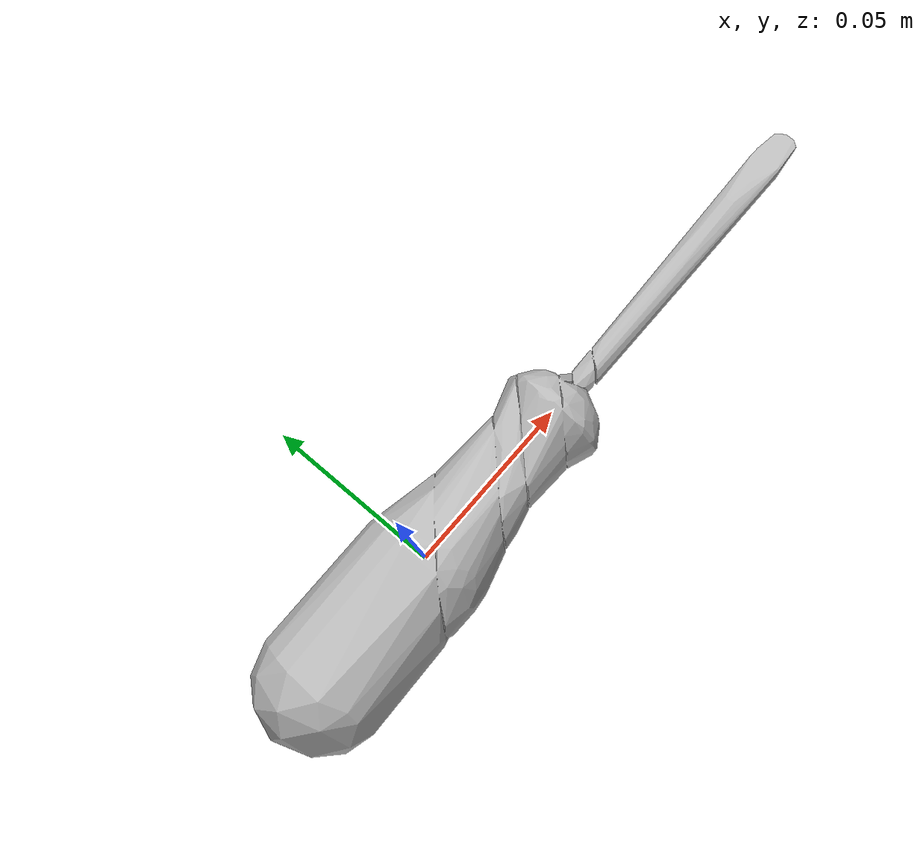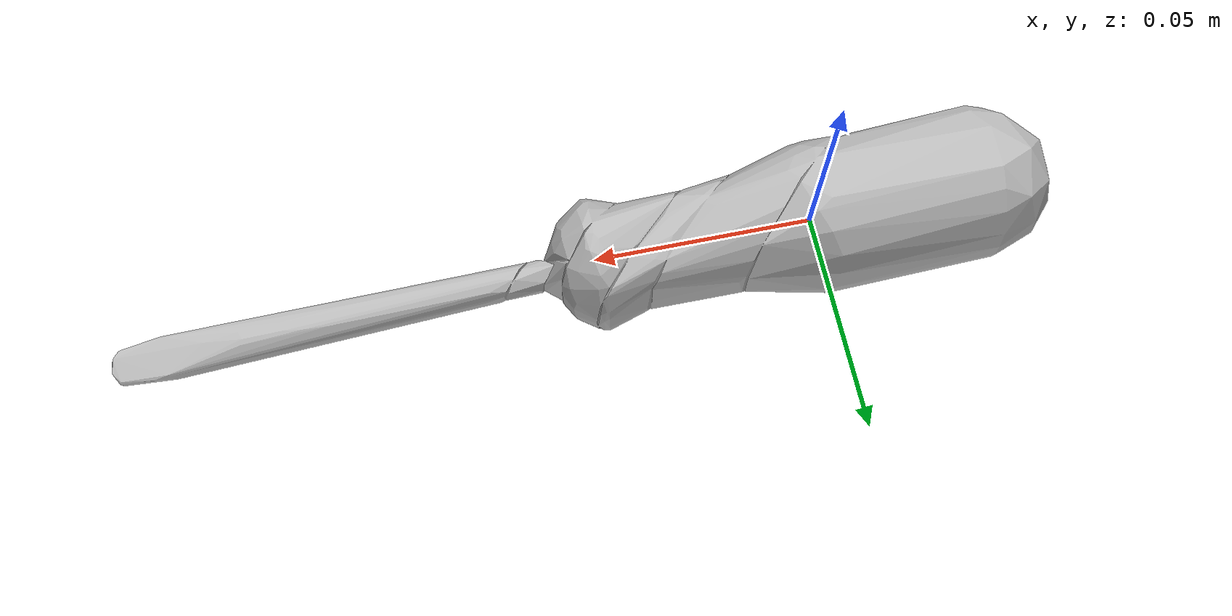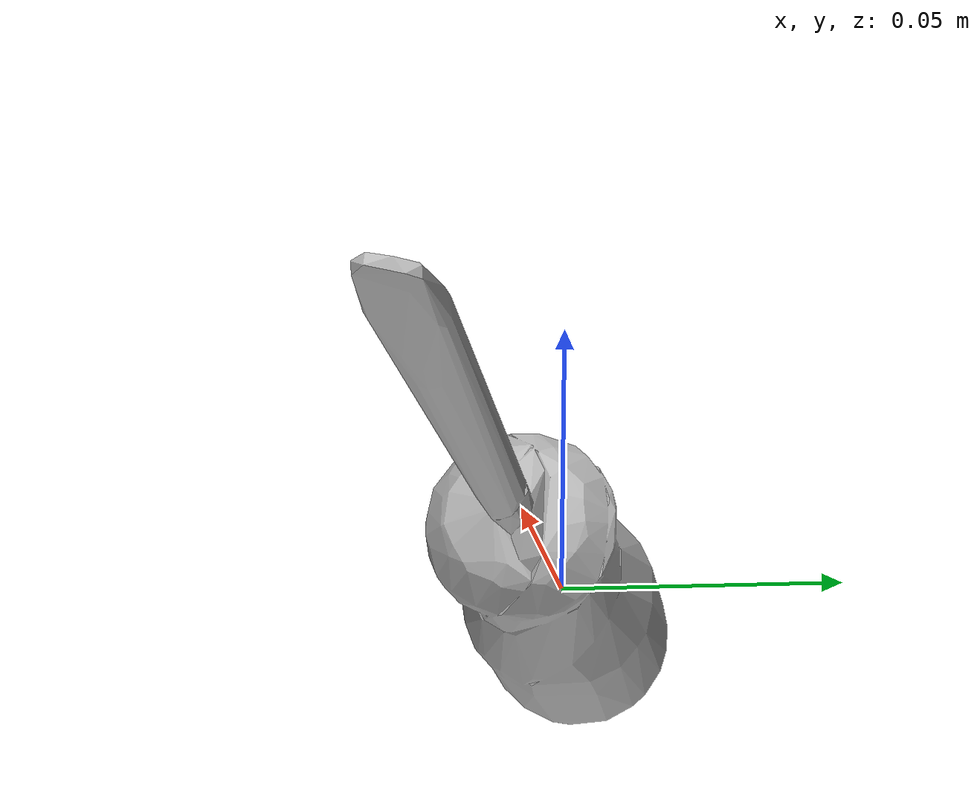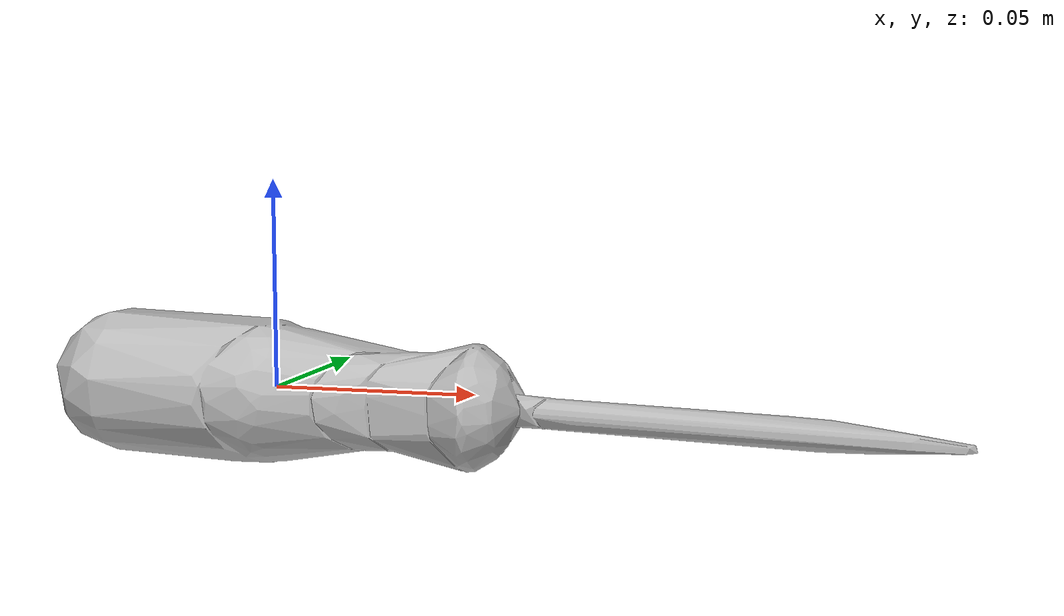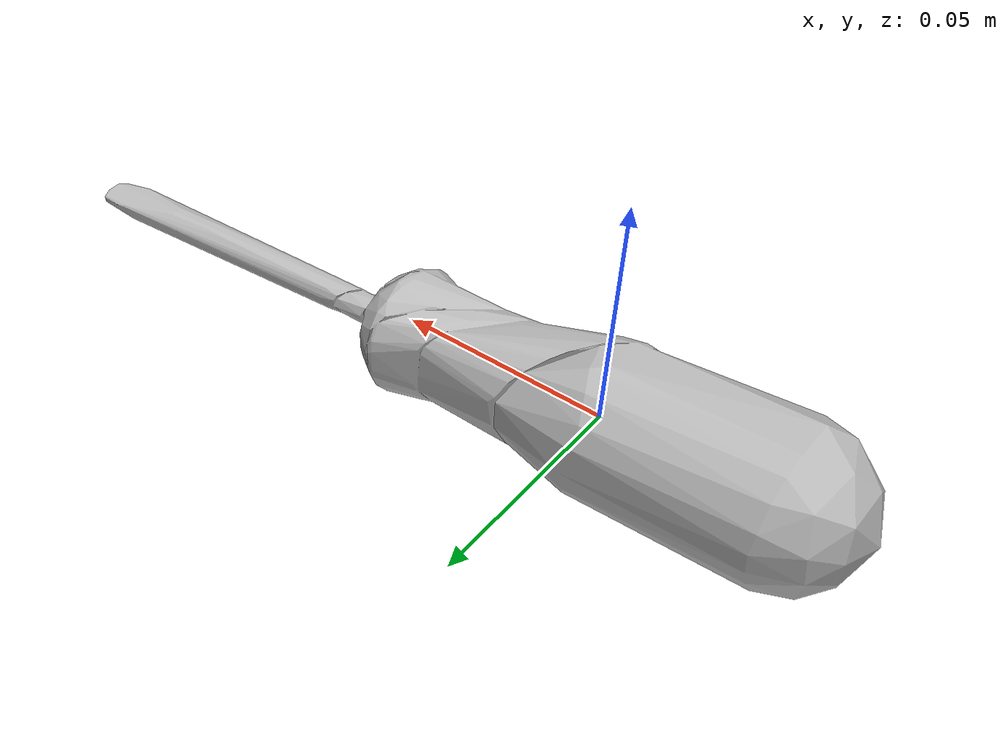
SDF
<?xml version='1.0'?>
<sdf version="1.4">
  <model name="flat_screwdriver">
    <static>false</static>
    <link name="link">
      <inertial>
        <pose>0.023228351441964463 -0.02270556071884342 0.016179821688211804 -1.685465166296971 -1.2285699396955838 0.9119711789659977</pose>
        <mass>0.00017153252062943915</mass>
        <inertia>
          <ixx>4.2719946419307267e-07</ixx>
          <ixy>4.516552657778931e-24</ixy>
          <ixz>9.370980255872296e-23</ixz>
          <iyy>4.1076640307383204e-07</iyy>
          <iyz>5.611821474058033e-23</iyz>
          <izz>4.0753878020832136e-08</izz>
        </inertia>
      </inertial>
      <collision name="collision">
        <geometry>
          <!-- Use a downsampled mesh for collisions -->
          <mesh>
            <uri>model://044_flat_screwdriver/google_16k/low_poly.obj</uri>
	        </mesh>
        </geometry>
        <surface>
        <friction>
          <ode>
            <mu>0.8</mu>
            <mu2>0.6</mu2>
          </ode>
        </friction>
      </surface>
      </collision>
      <visual name="visual">
        <geometry>
          <mesh>
            <uri>model://044_flat_screwdriver/google_16k/textured.obj</uri>
	        </mesh>
        </geometry>
        <material>
          <script>
            <uri>model://044_flat_screwdriver/flat_screwdriver.material</uri>
            <name>flat_screwdriver</name>
          </script>
        </material>
      </visual>
    </link>
  </model>
</sdf>
